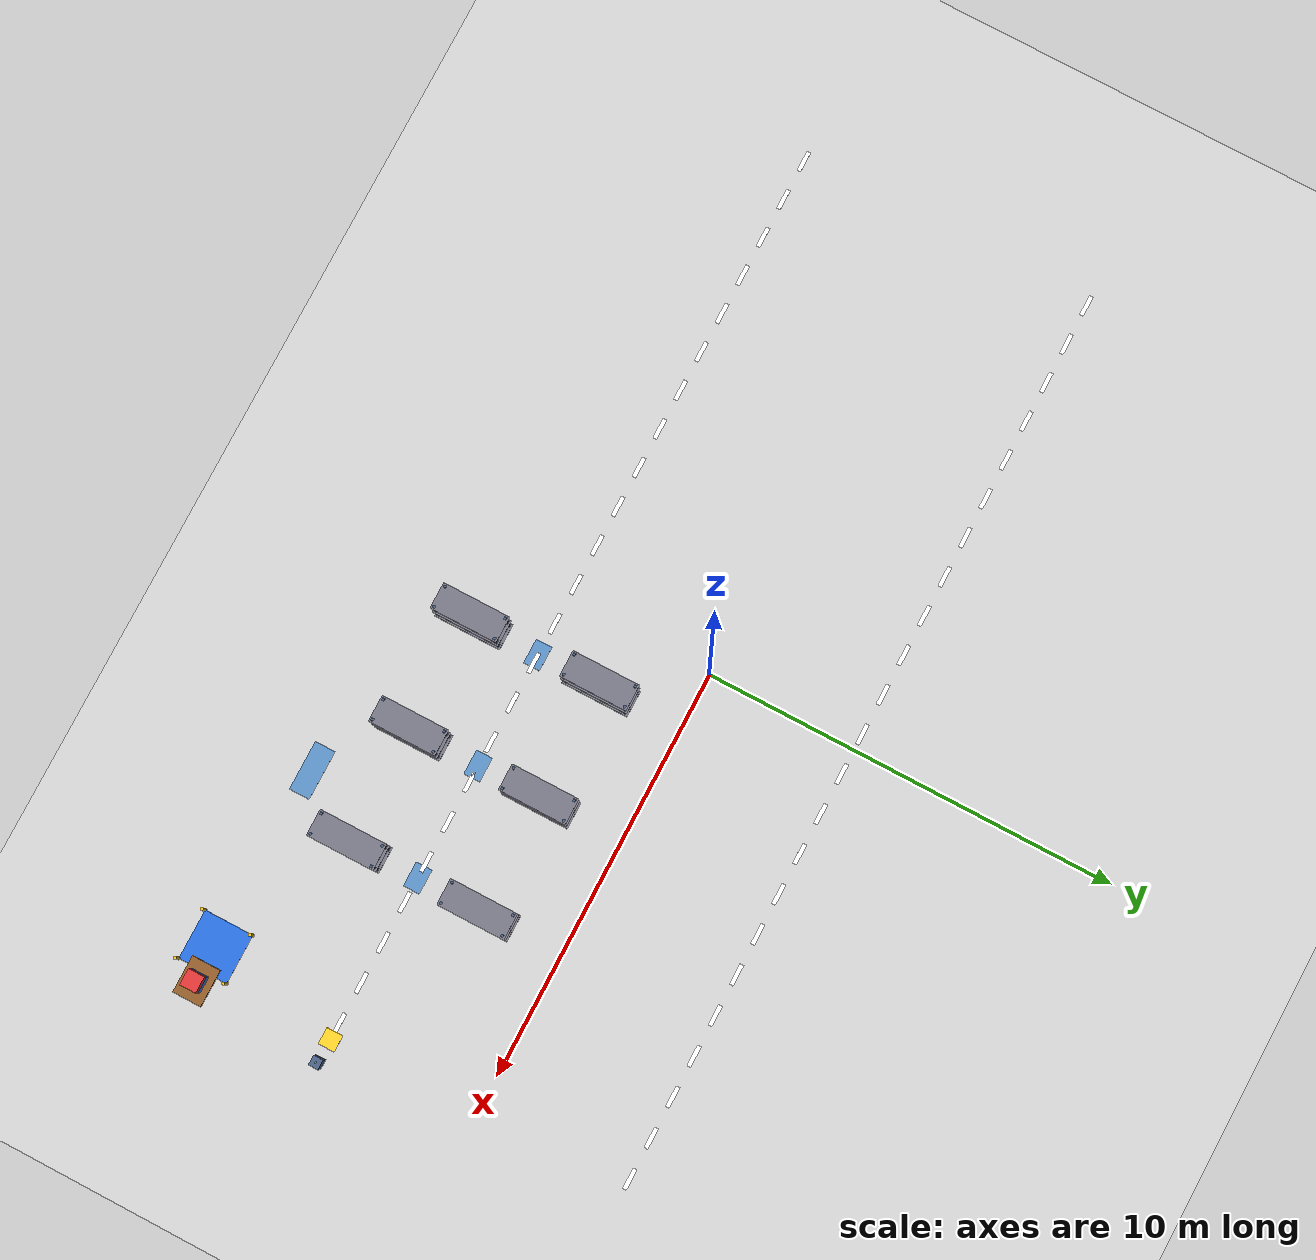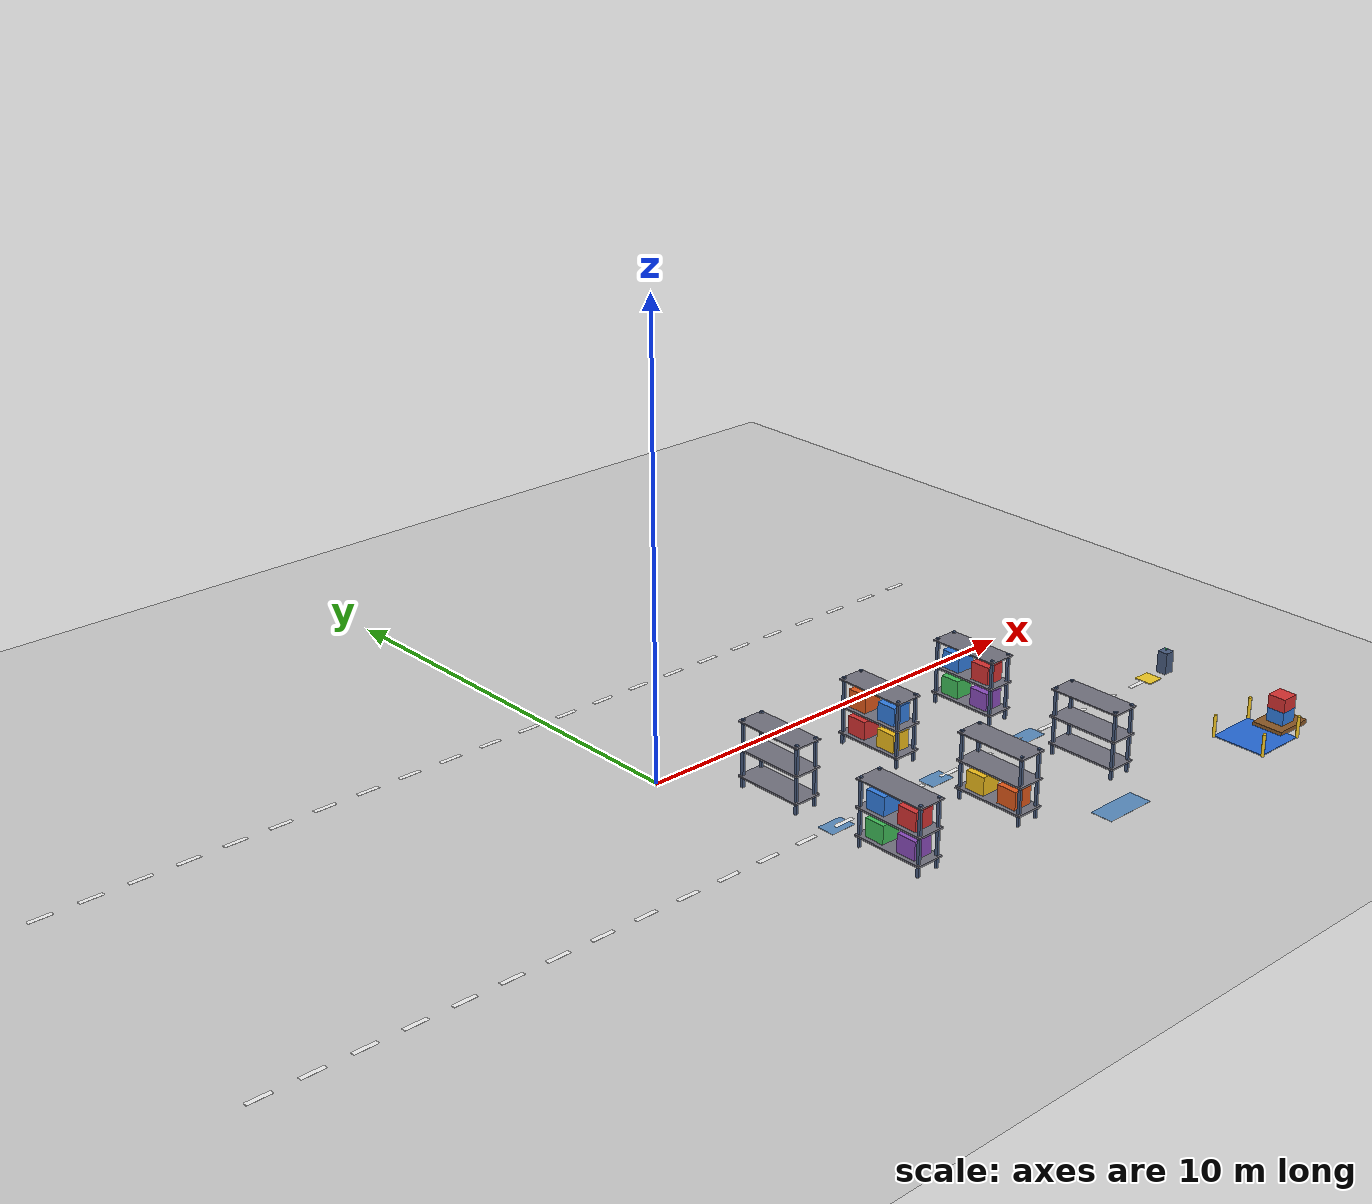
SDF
<sdf version="1.6">
 <world name="warehouse">
  <include><uri>model://ground_plane</uri></include>
  <include><uri>model://sun</uri></include>
  <model name="rack_r2_c3">
   <static>true</static>
   <pose>1.4 -2.0 0 0 0 0</pose>
   <link name="col">
    <collision name="col_c">
     <pose>0 0 0.75 0 0 0</pose>
     <geometry><box><size>0.6 1.6 1.5</size></box></geometry>
    </collision>
   </link>
   <link name="post_0_25_0_75">
    <visual name="post_0_25_0_75_v">
     <pose>0.25 0.75 0.75 0 0 0</pose>
     <geometry><box><size>0.06 0.06 1.5</size></box></geometry>
     <material>
      <ambient>0.28 0.36 0.5 1.0</ambient>
      <diffuse>0.28 0.36 0.5 1.0</diffuse>
      <specular>0.1 0.1 0.1 1</specular>
     </material>
    </visual>
   </link>
   <link name="post_0_25_m0_75">
    <visual name="post_0_25_m0_75_v">
     <pose>0.25 -0.75 0.75 0 0 0</pose>
     <geometry><box><size>0.06 0.06 1.5</size></box></geometry>
     <material>
      <ambient>0.28 0.36 0.5 1.0</ambient>
      <diffuse>0.28 0.36 0.5 1.0</diffuse>
      <specular>0.1 0.1 0.1 1</specular>
     </material>
    </visual>
   </link>
   <link name="post_m0_25_0_75">
    <visual name="post_m0_25_0_75_v">
     <pose>-0.25 0.75 0.75 0 0 0</pose>
     <geometry><box><size>0.06 0.06 1.5</size></box></geometry>
     <material>
      <ambient>0.28 0.36 0.5 1.0</ambient>
      <diffuse>0.28 0.36 0.5 1.0</diffuse>
      <specular>0.1 0.1 0.1 1</specular>
     </material>
    </visual>
   </link>
   <link name="post_m0_25_m0_75">
    <visual name="post_m0_25_m0_75_v">
     <pose>-0.25 -0.75 0.75 0 0 0</pose>
     <geometry><box><size>0.06 0.06 1.5</size></box></geometry>
     <material>
      <ambient>0.28 0.36 0.5 1.0</ambient>
      <diffuse>0.28 0.36 0.5 1.0</diffuse>
      <specular>0.1 0.1 0.1 1</specular>
     </material>
    </visual>
   </link>
   <link name="deck_low">
    <visual name="deck_low_v">
     <pose>0 0 0.25 0 0 0</pose>
     <geometry><box><size>0.64 1.6400000000000001 0.04</size></box></geometry>
     <material>
      <ambient>0.45 0.45 0.5 1.0</ambient>
      <diffuse>0.45 0.45 0.5 1.0</diffuse>
      <specular>0.1 0.1 0.1 1</specular>
     </material>
    </visual>
   </link>
   <link name="deck_mid">
    <visual name="deck_mid_v">
     <pose>0 0 0.85 0 0 0</pose>
     <geometry><box><size>0.64 1.6400000000000001 0.04</size></box></geometry>
     <material>
      <ambient>0.45 0.45 0.5 1.0</ambient>
      <diffuse>0.45 0.45 0.5 1.0</diffuse>
      <specular>0.1 0.1 0.1 1</specular>
     </material>
    </visual>
   </link>
   <link name="top_beam">
    <visual name="top_beam_v">
     <pose>0 0 1.45 0 0 0</pose>
     <geometry><box><size>0.64 1.6400000000000001 0.03</size></box></geometry>
     <material>
      <ambient>0.45 0.45 0.5 1.0</ambient>
      <diffuse>0.45 0.45 0.5 1.0</diffuse>
      <specular>0.1 0.1 0.1 1</specular>
     </material>
    </visual>
   </link>
  </model>
  <model name="rack_r2_c4">
   <static>true</static>
   <pose>4.2 -2.0 0 0 0 0</pose>
   <link name="col">
    <collision name="col_c">
     <pose>0 0 0.75 0 0 0</pose>
     <geometry><box><size>0.6 1.6 1.5</size></box></geometry>
    </collision>
   </link>
   <link name="post_0_25_0_75">
    <visual name="post_0_25_0_75_v">
     <pose>0.25 0.75 0.75 0 0 0</pose>
     <geometry><box><size>0.06 0.06 1.5</size></box></geometry>
     <material>
      <ambient>0.28 0.36 0.5 1.0</ambient>
      <diffuse>0.28 0.36 0.5 1.0</diffuse>
      <specular>0.1 0.1 0.1 1</specular>
     </material>
    </visual>
   </link>
   <link name="post_0_25_m0_75">
    <visual name="post_0_25_m0_75_v">
     <pose>0.25 -0.75 0.75 0 0 0</pose>
     <geometry><box><size>0.06 0.06 1.5</size></box></geometry>
     <material>
      <ambient>0.28 0.36 0.5 1.0</ambient>
      <diffuse>0.28 0.36 0.5 1.0</diffuse>
      <specular>0.1 0.1 0.1 1</specular>
     </material>
    </visual>
   </link>
   <link name="post_m0_25_0_75">
    <visual name="post_m0_25_0_75_v">
     <pose>-0.25 0.75 0.75 0 0 0</pose>
     <geometry><box><size>0.06 0.06 1.5</size></box></geometry>
     <material>
      <ambient>0.28 0.36 0.5 1.0</ambient>
      <diffuse>0.28 0.36 0.5 1.0</diffuse>
      <specular>0.1 0.1 0.1 1</specular>
     </material>
    </visual>
   </link>
   <link name="post_m0_25_m0_75">
    <visual name="post_m0_25_m0_75_v">
     <pose>-0.25 -0.75 0.75 0 0 0</pose>
     <geometry><box><size>0.06 0.06 1.5</size></box></geometry>
     <material>
      <ambient>0.28 0.36 0.5 1.0</ambient>
      <diffuse>0.28 0.36 0.5 1.0</diffuse>
      <specular>0.1 0.1 0.1 1</specular>
     </material>
    </visual>
   </link>
   <link name="deck_low">
    <visual name="deck_low_v">
     <pose>0 0 0.25 0 0 0</pose>
     <geometry><box><size>0.64 1.6400000000000001 0.04</size></box></geometry>
     <material>
      <ambient>0.45 0.45 0.5 1.0</ambient>
      <diffuse>0.45 0.45 0.5 1.0</diffuse>
      <specular>0.1 0.1 0.1 1</specular>
     </material>
    </visual>
   </link>
   <link name="deck_mid">
    <visual name="deck_mid_v">
     <pose>0 0 0.85 0 0 0</pose>
     <geometry><box><size>0.64 1.6400000000000001 0.04</size></box></geometry>
     <material>
      <ambient>0.45 0.45 0.5 1.0</ambient>
      <diffuse>0.45 0.45 0.5 1.0</diffuse>
      <specular>0.1 0.1 0.1 1</specular>
     </material>
    </visual>
   </link>
   <link name="top_beam">
    <visual name="top_beam_v">
     <pose>0 0 1.45 0 0 0</pose>
     <geometry><box><size>0.64 1.6400000000000001 0.03</size></box></geometry>
     <material>
      <ambient>0.45 0.45 0.5 1.0</ambient>
      <diffuse>0.45 0.45 0.5 1.0</diffuse>
      <specular>0.1 0.1 0.1 1</specular>
     </material>
    </visual>
   </link>
   <link name="box_l1">
    <visual name="box_l1_v">
     <pose>0 0.4 0.47 0 0 0</pose>
     <geometry><box><size>0.45 0.45 0.4</size></box></geometry>
     <material>
      <ambient>0.85 0.2 0.2 1.0</ambient>
      <diffuse>0.85 0.2 0.2 1.0</diffuse>
      <specular>0.1 0.1 0.1 1</specular>
     </material>
    </visual>
   </link>
   <link name="box_l2">
    <visual name="box_l2_v">
     <pose>0 -0.4 0.47 0 0 0</pose>
     <geometry><box><size>0.45 0.45 0.4</size></box></geometry>
     <material>
      <ambient>0.95 0.75 0.1 1.0</ambient>
      <diffuse>0.95 0.75 0.1 1.0</diffuse>
      <specular>0.1 0.1 0.1 1</specular>
     </material>
    </visual>
   </link>
   <link name="box_h1">
    <visual name="box_h1_v">
     <pose>0 0.4 1.07 0 0 0</pose>
     <geometry><box><size>0.45 0.45 0.4</size></box></geometry>
     <material>
      <ambient>0.9 0.35 0.1 1.0</ambient>
      <diffuse>0.9 0.35 0.1 1.0</diffuse>
      <specular>0.1 0.1 0.1 1</specular>
     </material>
    </visual>
   </link>
   <link name="box_h2">
    <visual name="box_h2_v">
     <pose>0 -0.4 1.07 0 0 0</pose>
     <geometry><box><size>0.45 0.45 0.4</size></box></geometry>
     <material>
      <ambient>0.2 0.5 0.9 1.0</ambient>
      <diffuse>0.2 0.5 0.9 1.0</diffuse>
      <specular>0.1 0.1 0.1 1</specular>
     </material>
    </visual>
   </link>
  </model>
  <model name="rack_r2_c5">
   <static>true</static>
   <pose>7.0 -2.0 0 0 0 0</pose>
   <link name="col">
    <collision name="col_c">
     <pose>0 0 0.75 0 0 0</pose>
     <geometry><box><size>0.6 1.0 1.5</size></box></geometry>
    </collision>
   </link>
   <link name="post_0_25_0_75">
    <visual name="post_0_25_0_75_v">
     <pose>0.25 0.75 0.75 0 0 0</pose>
     <geometry><box><size>0.06 0.06 1.5</size></box></geometry>
     <material>
      <ambient>0.28 0.36 0.5 1.0</ambient>
      <diffuse>0.28 0.36 0.5 1.0</diffuse>
      <specular>0.1 0.1 0.1 1</specular>
     </material>
    </visual>
   </link>
   <link name="post_0_25_m0_75">
    <visual name="post_0_25_m0_75_v">
     <pose>0.25 -0.75 0.75 0 0 0</pose>
     <geometry><box><size>0.06 0.06 1.5</size></box></geometry>
     <material>
      <ambient>0.28 0.36 0.5 1.0</ambient>
      <diffuse>0.28 0.36 0.5 1.0</diffuse>
      <specular>0.1 0.1 0.1 1</specular>
     </material>
    </visual>
   </link>
   <link name="post_m0_25_0_75">
    <visual name="post_m0_25_0_75_v">
     <pose>-0.25 0.75 0.75 0 0 0</pose>
     <geometry><box><size>0.06 0.06 1.5</size></box></geometry>
     <material>
      <ambient>0.28 0.36 0.5 1.0</ambient>
      <diffuse>0.28 0.36 0.5 1.0</diffuse>
      <specular>0.1 0.1 0.1 1</specular>
     </material>
    </visual>
   </link>
   <link name="post_m0_25_m0_75">
    <visual name="post_m0_25_m0_75_v">
     <pose>-0.25 -0.75 0.75 0 0 0</pose>
     <geometry><box><size>0.06 0.06 1.5</size></box></geometry>
     <material>
      <ambient>0.28 0.36 0.5 1.0</ambient>
      <diffuse>0.28 0.36 0.5 1.0</diffuse>
      <specular>0.1 0.1 0.1 1</specular>
     </material>
    </visual>
   </link>
   <link name="deck_low">
    <visual name="deck_low_v">
     <pose>0 0 0.25 0 0 0</pose>
     <geometry><box><size>0.64 1.6400000000000001 0.04</size></box></geometry>
     <material>
      <ambient>0.45 0.45 0.5 1.0</ambient>
      <diffuse>0.45 0.45 0.5 1.0</diffuse>
      <specular>0.1 0.1 0.1 1</specular>
     </material>
    </visual>
   </link>
   <link name="deck_mid">
    <visual name="deck_mid_v">
     <pose>0 0 0.85 0 0 0</pose>
     <geometry><box><size>0.64 1.6400000000000001 0.04</size></box></geometry>
     <material>
      <ambient>0.45 0.45 0.5 1.0</ambient>
      <diffuse>0.45 0.45 0.5 1.0</diffuse>
      <specular>0.1 0.1 0.1 1</specular>
     </material>
    </visual>
   </link>
   <link name="top_beam">
    <visual name="top_beam_v">
     <pose>0 0 1.45 0 0 0</pose>
     <geometry><box><size>0.64 1.6400000000000001 0.03</size></box></geometry>
     <material>
      <ambient>0.45 0.45 0.5 1.0</ambient>
      <diffuse>0.45 0.45 0.5 1.0</diffuse>
      <specular>0.1 0.1 0.1 1</specular>
     </material>
    </visual>
   </link>
   <link name="box_l1">
    <visual name="box_l1_v">
     <pose>0 0.4 0.47 0 0 0</pose>
     <geometry><box><size>0.45 0.45 0.4</size></box></geometry>
     <material>
      <ambient>0.25 0.75 0.35 1.0</ambient>
      <diffuse>0.25 0.75 0.35 1.0</diffuse>
      <specular>0.1 0.1 0.1 1</specular>
     </material>
    </visual>
   </link>
   <link name="box_l2">
    <visual name="box_l2_v">
     <pose>0 -0.4 0.47 0 0 0</pose>
     <geometry><box><size>0.45 0.45 0.4</size></box></geometry>
     <material>
      <ambient>0.55 0.3 0.75 1.0</ambient>
      <diffuse>0.55 0.3 0.75 1.0</diffuse>
      <specular>0.1 0.1 0.1 1</specular>
     </material>
    </visual>
   </link>
   <link name="box_h1">
    <visual name="box_h1_v">
     <pose>0 0.4 1.07 0 0 0</pose>
     <geometry><box><size>0.45 0.45 0.4</size></box></geometry>
     <material>
      <ambient>0.2 0.5 0.9 1.0</ambient>
      <diffuse>0.2 0.5 0.9 1.0</diffuse>
      <specular>0.1 0.1 0.1 1</specular>
     </material>
    </visual>
   </link>
   <link name="box_h2">
    <visual name="box_h2_v">
     <pose>0 -0.4 1.07 0 0 0</pose>
     <geometry><box><size>0.45 0.45 0.4</size></box></geometry>
     <material>
      <ambient>0.85 0.2 0.2 1.0</ambient>
      <diffuse>0.85 0.2 0.2 1.0</diffuse>
      <specular>0.1 0.1 0.1 1</specular>
     </material>
    </visual>
   </link>
  </model>
  <model name="rack_r3_c3">
   <static>true</static>
   <pose>1.4 -5.2 0 0 0 0</pose>
   <link name="col">
    <collision name="col_c">
     <pose>0 0 0.75 0 0 0</pose>
     <geometry><box><size>0.6 1.6 1.5</size></box></geometry>
    </collision>
   </link>
   <link name="post_0_25_0_75">
    <visual name="post_0_25_0_75_v">
     <pose>0.25 0.75 0.75 0 0 0</pose>
     <geometry><box><size>0.06 0.06 1.5</size></box></geometry>
     <material>
      <ambient>0.28 0.36 0.5 1.0</ambient>
      <diffuse>0.28 0.36 0.5 1.0</diffuse>
      <specular>0.1 0.1 0.1 1</specular>
     </material>
    </visual>
   </link>
   <link name="post_0_25_m0_75">
    <visual name="post_0_25_m0_75_v">
     <pose>0.25 -0.75 0.75 0 0 0</pose>
     <geometry><box><size>0.06 0.06 1.5</size></box></geometry>
     <material>
      <ambient>0.28 0.36 0.5 1.0</ambient>
      <diffuse>0.28 0.36 0.5 1.0</diffuse>
      <specular>0.1 0.1 0.1 1</specular>
     </material>
    </visual>
   </link>
   <link name="post_m0_25_0_75">
    <visual name="post_m0_25_0_75_v">
     <pose>-0.25 0.75 0.75 0 0 0</pose>
     <geometry><box><size>0.06 0.06 1.5</size></box></geometry>
     <material>
      <ambient>0.28 0.36 0.5 1.0</ambient>
      <diffuse>0.28 0.36 0.5 1.0</diffuse>
      <specular>0.1 0.1 0.1 1</specular>
     </material>
    </visual>
   </link>
   <link name="post_m0_25_m0_75">
    <visual name="post_m0_25_m0_75_v">
     <pose>-0.25 -0.75 0.75 0 0 0</pose>
     <geometry><box><size>0.06 0.06 1.5</size></box></geometry>
     <material>
      <ambient>0.28 0.36 0.5 1.0</ambient>
      <diffuse>0.28 0.36 0.5 1.0</diffuse>
      <specular>0.1 0.1 0.1 1</specular>
     </material>
    </visual>
   </link>
   <link name="deck_low">
    <visual name="deck_low_v">
     <pose>0 0 0.25 0 0 0</pose>
     <geometry><box><size>0.64 1.6400000000000001 0.04</size></box></geometry>
     <material>
      <ambient>0.45 0.45 0.5 1.0</ambient>
      <diffuse>0.45 0.45 0.5 1.0</diffuse>
      <specular>0.1 0.1 0.1 1</specular>
     </material>
    </visual>
   </link>
   <link name="deck_mid">
    <visual name="deck_mid_v">
     <pose>0 0 0.85 0 0 0</pose>
     <geometry><box><size>0.64 1.6400000000000001 0.04</size></box></geometry>
     <material>
      <ambient>0.45 0.45 0.5 1.0</ambient>
      <diffuse>0.45 0.45 0.5 1.0</diffuse>
      <specular>0.1 0.1 0.1 1</specular>
     </material>
    </visual>
   </link>
   <link name="top_beam">
    <visual name="top_beam_v">
     <pose>0 0 1.45 0 0 0</pose>
     <geometry><box><size>0.64 1.6400000000000001 0.03</size></box></geometry>
     <material>
      <ambient>0.45 0.45 0.5 1.0</ambient>
      <diffuse>0.45 0.45 0.5 1.0</diffuse>
      <specular>0.1 0.1 0.1 1</specular>
     </material>
    </visual>
   </link>
   <link name="box_l1">
    <visual name="box_l1_v">
     <pose>0 0.4 0.47 0 0 0</pose>
     <geometry><box><size>0.45 0.45 0.4</size></box></geometry>
     <material>
      <ambient>0.25 0.75 0.35 1.0</ambient>
      <diffuse>0.25 0.75 0.35 1.0</diffuse>
      <specular>0.1 0.1 0.1 1</specular>
     </material>
    </visual>
   </link>
   <link name="box_l2">
    <visual name="box_l2_v">
     <pose>0 -0.4 0.47 0 0 0</pose>
     <geometry><box><size>0.45 0.45 0.4</size></box></geometry>
     <material>
      <ambient>0.55 0.3 0.75 1.0</ambient>
      <diffuse>0.55 0.3 0.75 1.0</diffuse>
      <specular>0.1 0.1 0.1 1</specular>
     </material>
    </visual>
   </link>
   <link name="box_h1">
    <visual name="box_h1_v">
     <pose>0 0.4 1.07 0 0 0</pose>
     <geometry><box><size>0.45 0.45 0.4</size></box></geometry>
     <material>
      <ambient>0.2 0.5 0.9 1.0</ambient>
      <diffuse>0.2 0.5 0.9 1.0</diffuse>
      <specular>0.1 0.1 0.1 1</specular>
     </material>
    </visual>
   </link>
   <link name="box_h2">
    <visual name="box_h2_v">
     <pose>0 -0.4 1.07 0 0 0</pose>
     <geometry><box><size>0.45 0.45 0.4</size></box></geometry>
     <material>
      <ambient>0.85 0.2 0.2 1.0</ambient>
      <diffuse>0.85 0.2 0.2 1.0</diffuse>
      <specular>0.1 0.1 0.1 1</specular>
     </material>
    </visual>
   </link>
  </model>
  <model name="rack_r3_c4">
   <static>true</static>
   <pose>4.2 -5.2 0 0 0 0</pose>
   <link name="col">
    <collision name="col_c">
     <pose>0 0 0.75 0 0 0</pose>
     <geometry><box><size>0.6 1.6 1.5</size></box></geometry>
    </collision>
   </link>
   <link name="post_0_25_0_75">
    <visual name="post_0_25_0_75_v">
     <pose>0.25 0.75 0.75 0 0 0</pose>
     <geometry><box><size>0.06 0.06 1.5</size></box></geometry>
     <material>
      <ambient>0.28 0.36 0.5 1.0</ambient>
      <diffuse>0.28 0.36 0.5 1.0</diffuse>
      <specular>0.1 0.1 0.1 1</specular>
     </material>
    </visual>
   </link>
   <link name="post_0_25_m0_75">
    <visual name="post_0_25_m0_75_v">
     <pose>0.25 -0.75 0.75 0 0 0</pose>
     <geometry><box><size>0.06 0.06 1.5</size></box></geometry>
     <material>
      <ambient>0.28 0.36 0.5 1.0</ambient>
      <diffuse>0.28 0.36 0.5 1.0</diffuse>
      <specular>0.1 0.1 0.1 1</specular>
     </material>
    </visual>
   </link>
   <link name="post_m0_25_0_75">
    <visual name="post_m0_25_0_75_v">
     <pose>-0.25 0.75 0.75 0 0 0</pose>
     <geometry><box><size>0.06 0.06 1.5</size></box></geometry>
     <material>
      <ambient>0.28 0.36 0.5 1.0</ambient>
      <diffuse>0.28 0.36 0.5 1.0</diffuse>
      <specular>0.1 0.1 0.1 1</specular>
     </material>
    </visual>
   </link>
   <link name="post_m0_25_m0_75">
    <visual name="post_m0_25_m0_75_v">
     <pose>-0.25 -0.75 0.75 0 0 0</pose>
     <geometry><box><size>0.06 0.06 1.5</size></box></geometry>
     <material>
      <ambient>0.28 0.36 0.5 1.0</ambient>
      <diffuse>0.28 0.36 0.5 1.0</diffuse>
      <specular>0.1 0.1 0.1 1</specular>
     </material>
    </visual>
   </link>
   <link name="deck_low">
    <visual name="deck_low_v">
     <pose>0 0 0.25 0 0 0</pose>
     <geometry><box><size>0.64 1.6400000000000001 0.04</size></box></geometry>
     <material>
      <ambient>0.45 0.45 0.5 1.0</ambient>
      <diffuse>0.45 0.45 0.5 1.0</diffuse>
      <specular>0.1 0.1 0.1 1</specular>
     </material>
    </visual>
   </link>
   <link name="deck_mid">
    <visual name="deck_mid_v">
     <pose>0 0 0.85 0 0 0</pose>
     <geometry><box><size>0.64 1.6400000000000001 0.04</size></box></geometry>
     <material>
      <ambient>0.45 0.45 0.5 1.0</ambient>
      <diffuse>0.45 0.45 0.5 1.0</diffuse>
      <specular>0.1 0.1 0.1 1</specular>
     </material>
    </visual>
   </link>
   <link name="top_beam">
    <visual name="top_beam_v">
     <pose>0 0 1.45 0 0 0</pose>
     <geometry><box><size>0.64 1.6400000000000001 0.03</size></box></geometry>
     <material>
      <ambient>0.45 0.45 0.5 1.0</ambient>
      <diffuse>0.45 0.45 0.5 1.0</diffuse>
      <specular>0.1 0.1 0.1 1</specular>
     </material>
    </visual>
   </link>
   <link name="box_l1">
    <visual name="box_l1_v">
     <pose>0 0.4 0.47 0 0 0</pose>
     <geometry><box><size>0.45 0.45 0.4</size></box></geometry>
     <material>
      <ambient>0.95 0.75 0.1 1.0</ambient>
      <diffuse>0.95 0.75 0.1 1.0</diffuse>
      <specular>0.1 0.1 0.1 1</specular>
     </material>
    </visual>
   </link>
   <link name="box_l2">
    <visual name="box_l2_v">
     <pose>0 -0.4 0.47 0 0 0</pose>
     <geometry><box><size>0.45 0.45 0.4</size></box></geometry>
     <material>
      <ambient>0.9 0.35 0.1 1.0</ambient>
      <diffuse>0.9 0.35 0.1 1.0</diffuse>
      <specular>0.1 0.1 0.1 1</specular>
     </material>
    </visual>
   </link>
  </model>
  <model name="rack_r3_c5">
   <static>true</static>
   <pose>7.0 -5.2 0 0 0 0</pose>
   <link name="col">
    <collision name="col_c">
     <pose>0 0 0.75 0 0 0</pose>
     <geometry><box><size>0.6 1.0 1.5</size></box></geometry>
    </collision>
   </link>
   <link name="post_0_25_0_75">
    <visual name="post_0_25_0_75_v">
     <pose>0.25 0.75 0.75 0 0 0</pose>
     <geometry><box><size>0.06 0.06 1.5</size></box></geometry>
     <material>
      <ambient>0.28 0.36 0.5 1.0</ambient>
      <diffuse>0.28 0.36 0.5 1.0</diffuse>
      <specular>0.1 0.1 0.1 1</specular>
     </material>
    </visual>
   </link>
   <link name="post_0_25_m0_75">
    <visual name="post_0_25_m0_75_v">
     <pose>0.25 -0.75 0.75 0 0 0</pose>
     <geometry><box><size>0.06 0.06 1.5</size></box></geometry>
     <material>
      <ambient>0.28 0.36 0.5 1.0</ambient>
      <diffuse>0.28 0.36 0.5 1.0</diffuse>
      <specular>0.1 0.1 0.1 1</specular>
     </material>
    </visual>
   </link>
   <link name="post_m0_25_0_75">
    <visual name="post_m0_25_0_75_v">
     <pose>-0.25 0.75 0.75 0 0 0</pose>
     <geometry><box><size>0.06 0.06 1.5</size></box></geometry>
     <material>
      <ambient>0.28 0.36 0.5 1.0</ambient>
      <diffuse>0.28 0.36 0.5 1.0</diffuse>
      <specular>0.1 0.1 0.1 1</specular>
     </material>
    </visual>
   </link>
   <link name="post_m0_25_m0_75">
    <visual name="post_m0_25_m0_75_v">
     <pose>-0.25 -0.75 0.75 0 0 0</pose>
     <geometry><box><size>0.06 0.06 1.5</size></box></geometry>
     <material>
      <ambient>0.28 0.36 0.5 1.0</ambient>
      <diffuse>0.28 0.36 0.5 1.0</diffuse>
      <specular>0.1 0.1 0.1 1</specular>
     </material>
    </visual>
   </link>
   <link name="deck_low">
    <visual name="deck_low_v">
     <pose>0 0 0.25 0 0 0</pose>
     <geometry><box><size>0.64 1.6400000000000001 0.04</size></box></geometry>
     <material>
      <ambient>0.45 0.45 0.5 1.0</ambient>
      <diffuse>0.45 0.45 0.5 1.0</diffuse>
      <specular>0.1 0.1 0.1 1</specular>
     </material>
    </visual>
   </link>
   <link name="deck_mid">
    <visual name="deck_mid_v">
     <pose>0 0 0.85 0 0 0</pose>
     <geometry><box><size>0.64 1.6400000000000001 0.04</size></box></geometry>
     <material>
      <ambient>0.45 0.45 0.5 1.0</ambient>
      <diffuse>0.45 0.45 0.5 1.0</diffuse>
      <specular>0.1 0.1 0.1 1</specular>
     </material>
    </visual>
   </link>
   <link name="top_beam">
    <visual name="top_beam_v">
     <pose>0 0 1.45 0 0 0</pose>
     <geometry><box><size>0.64 1.6400000000000001 0.03</size></box></geometry>
     <material>
      <ambient>0.45 0.45 0.5 1.0</ambient>
      <diffuse>0.45 0.45 0.5 1.0</diffuse>
      <specular>0.1 0.1 0.1 1</specular>
     </material>
    </visual>
   </link>
  </model>
  <model name="station_dropoff_se">
   <static>true</static>
   <pose>10.4 -6.8 0 0 0 0.0</pose>
   <link name="zone">
    <visual name="zone_v">
     <pose>0 0 0.01 0 0 0</pose>
     <geometry><box><size>1.2 1.2 0.02</size></box></geometry>
     <material>
      <ambient>0.15 0.42 0.85 1.0</ambient>
      <diffuse>0.15 0.42 0.85 1.0</diffuse>
      <specular>0.1 0.1 0.1 1</specular>
     </material>
    </visual>
   </link>
   <link name="stopline">
    <visual name="stopline_v">
     <pose>0 0.28 0.011 0 0 0</pose>
     <geometry><box><size>1.1 0.06 0.012</size></box></geometry>
     <material>
      <ambient>0.95 0.95 0.95 1.0</ambient>
      <diffuse>0.95 0.95 0.95 1.0</diffuse>
      <specular>0.1 0.1 0.1 1</specular>
     </material>
    </visual>
   </link>
   <link name="bollard_0_6_0_6">
    <visual name="bollard_0_6_0_6_v">
     <pose>0.6 0.6 0.25 0 0 0</pose>
     <geometry><cylinder><radius>0.035</radius><length>0.5</length></cylinder></geometry>
     <material>
      <ambient>0.92 0.75 0.12 1.0</ambient>
      <diffuse>0.92 0.75 0.12 1.0</diffuse>
      <specular>0.1 0.1 0.1 1</specular>
     </material>
    </visual>
   </link>
   <link name="bollard_0_6_m0_6">
    <visual name="bollard_0_6_m0_6_v">
     <pose>0.6 -0.6 0.25 0 0 0</pose>
     <geometry><cylinder><radius>0.035</radius><length>0.5</length></cylinder></geometry>
     <material>
      <ambient>0.92 0.75 0.12 1.0</ambient>
      <diffuse>0.92 0.75 0.12 1.0</diffuse>
      <specular>0.1 0.1 0.1 1</specular>
     </material>
    </visual>
   </link>
   <link name="bollard_m0_6_0_6">
    <visual name="bollard_m0_6_0_6_v">
     <pose>-0.6 0.6 0.25 0 0 0</pose>
     <geometry><cylinder><radius>0.035</radius><length>0.5</length></cylinder></geometry>
     <material>
      <ambient>0.92 0.75 0.12 1.0</ambient>
      <diffuse>0.92 0.75 0.12 1.0</diffuse>
      <specular>0.1 0.1 0.1 1</specular>
     </material>
    </visual>
   </link>
   <link name="bollard_m0_6_m0_6">
    <visual name="bollard_m0_6_m0_6_v">
     <pose>-0.6 -0.6 0.25 0 0 0</pose>
     <geometry><cylinder><radius>0.035</radius><length>0.5</length></cylinder></geometry>
     <material>
      <ambient>0.92 0.75 0.12 1.0</ambient>
      <diffuse>0.92 0.75 0.12 1.0</diffuse>
      <specular>0.1 0.1 0.1 1</specular>
     </material>
    </visual>
   </link>
   <link name="pallet">
    <visual name="pallet_v">
     <pose>0.85 0 0.05 0 0 0</pose>
     <geometry><box><size>0.9 0.7 0.1</size></box></geometry>
     <material>
      <ambient>0.55 0.35 0.15 1.0</ambient>
      <diffuse>0.55 0.35 0.15 1.0</diffuse>
      <specular>0.1 0.1 0.1 1</specular>
     </material>
    </visual>
    <collision name="pallet_c">
     <pose>0.85 0 0.05 0 0 0</pose>
     <geometry><box><size>0.9 0.7 0.1</size></box></geometry>
    </collision>
   </link>
   <link name="goods1">
    <visual name="goods1_v">
     <pose>0.85 0 0.25 0 0 0</pose>
     <geometry><box><size>0.4 0.4 0.3</size></box></geometry>
     <material>
      <ambient>0.2 0.5 0.9 1.0</ambient>
      <diffuse>0.2 0.5 0.9 1.0</diffuse>
      <specular>0.1 0.1 0.1 1</specular>
     </material>
    </visual>
    <collision name="goods1_c">
     <pose>0.85 0 0.25 0 0 0</pose>
     <geometry><box><size>0.4 0.4 0.3</size></box></geometry>
    </collision>
   </link>
   <link name="goods2">
    <visual name="goods2_v">
     <pose>0.85 0 0.55 0 0 0</pose>
     <geometry><box><size>0.4 0.4 0.3</size></box></geometry>
     <material>
      <ambient>0.85 0.2 0.2 1.0</ambient>
      <diffuse>0.85 0.2 0.2 1.0</diffuse>
      <specular>0.1 0.1 0.1 1</specular>
     </material>
    </visual>
    <collision name="goods2_c">
     <pose>0.85 0 0.55 0 0 0</pose>
     <geometry><box><size>0.4 0.4 0.3</size></box></geometry>
    </collision>
   </link>
  </model>
  <model name="charger_2">
   <static>true</static>
   <pose>11.0 -3.6 0 0 0 0.0</pose>
   <link name="pad">
    <visual name="pad_v">
     <pose>0 0 0.01 0 0 0</pose>
     <geometry><box><size>0.4 0.4 0.02</size></box></geometry>
     <material>
      <ambient>0.95 0.8 0.15 1.0</ambient>
      <diffuse>0.95 0.8 0.15 1.0</diffuse>
      <specular>0.1 0.1 0.1 1</specular>
     </material>
    </visual>
   </link>
   <link name="body">
    <visual name="body_v">
     <pose>0.55 0 0.25 0 0 0</pose>
     <geometry><box><size>0.24 0.24 0.5</size></box></geometry>
     <material>
      <ambient>0.28 0.36 0.5 1.0</ambient>
      <diffuse>0.28 0.36 0.5 1.0</diffuse>
      <specular>0.1 0.1 0.1 1</specular>
     </material>
    </visual>
    <collision name="body_c">
     <pose>0.55 0 0.25 0 0 0</pose>
     <geometry><box><size>0.24 0.24 0.5</size></box></geometry>
    </collision>
   </link>
   <link name="led">
    <visual name="led_v">
     <pose>0.55 0 0.53 0 0 0</pose>
     <geometry><cylinder><radius>0.02</radius><length>0.03</length></cylinder></geometry>
     <material>
      <ambient>0.12 0.68 0.32 1.0</ambient>
      <diffuse>0.12 0.68 0.32 1.0</diffuse>
      <specular>0.1 0.1 0.1 1</specular>
     </material>
    </visual>
    <collision name="led_c">
     <pose>0.55 0 0.53 0 0 0</pose>
     <geometry><cylinder><radius>0.02</radius><length>0.03</length></cylinder></geometry>
    </collision>
   </link>
  </model>
  <model name="rack_bay_9">
   <static>true</static>
   <pose>1.4 -3.6 0 0 0 0</pose>
   <link name="pad">
    <visual name="pad_v">
     <pose>0 0 0.005 0 0 0</pose>
     <geometry><box><size>0.6 0.4 0.005</size></box></geometry>
     <material>
      <ambient>0.35 0.55 0.75 1.0</ambient>
      <diffuse>0.35 0.55 0.75 1.0</diffuse>
      <specular>0.1 0.1 0.1 1</specular>
     </material>
    </visual>
   </link>
  </model>
  <model name="rack_bay_10">
   <static>true</static>
   <pose>4.2 -3.6 0 0 0 0</pose>
   <link name="pad">
    <visual name="pad_v">
     <pose>0 0 0.005 0 0 0</pose>
     <geometry><box><size>0.6 0.4 0.005</size></box></geometry>
     <material>
      <ambient>0.35 0.55 0.75 1.0</ambient>
      <diffuse>0.35 0.55 0.75 1.0</diffuse>
      <specular>0.1 0.1 0.1 1</specular>
     </material>
    </visual>
   </link>
  </model>
  <model name="rack_bay_11">
   <static>true</static>
   <pose>7.0 -3.6 0 0 0 0</pose>
   <link name="pad">
    <visual name="pad_v">
     <pose>0 0 0.005 0 0 0</pose>
     <geometry><box><size>0.6 0.4 0.005</size></box></geometry>
     <material>
      <ambient>0.35 0.55 0.75 1.0</ambient>
      <diffuse>0.35 0.55 0.75 1.0</diffuse>
      <specular>0.1 0.1 0.1 1</specular>
     </material>
    </visual>
   </link>
  </model>
  <model name="port_pad_3">
   <static>true</static>
   <pose>6.0 -6.8 0 0 0 0</pose>
   <link name="pad">
    <visual name="pad_v">
     <pose>0 0 0.005 0 0 0</pose>
     <geometry><box><size>1.2 0.5 0.005</size></box></geometry>
     <material>
      <ambient>0.35 0.55 0.75 1.0</ambient>
      <diffuse>0.35 0.55 0.75 1.0</diffuse>
      <specular>0.1 0.1 0.1 1</specular>
     </material>
    </visual>
   </link>
  </model>
  <model name="lane_north">
   <static>true</static>
   <link name="dash_0">
    <visual name="dash_0_v">
     <pose>-11.4 3.6 0.005 0 0 0</pose>
     <geometry><box><size>0.5 0.1 0.005</size></box></geometry>
     <material>
      <ambient>0.95 0.95 0.95 1.0</ambient>
      <diffuse>0.95 0.95 0.95 1.0</diffuse>
      <specular>0.1 0.1 0.1 1</specular>
     </material>
    </visual>
   </link>
   <link name="dash_1">
    <visual name="dash_1_v">
     <pose>-10.4 3.6 0.005 0 0 0</pose>
     <geometry><box><size>0.5 0.1 0.005</size></box></geometry>
     <material>
      <ambient>0.95 0.95 0.95 1.0</ambient>
      <diffuse>0.95 0.95 0.95 1.0</diffuse>
      <specular>0.1 0.1 0.1 1</specular>
     </material>
    </visual>
   </link>
   <link name="dash_2">
    <visual name="dash_2_v">
     <pose>-9.4 3.6 0.005 0 0 0</pose>
     <geometry><box><size>0.5 0.1 0.005</size></box></geometry>
     <material>
      <ambient>0.95 0.95 0.95 1.0</ambient>
      <diffuse>0.95 0.95 0.95 1.0</diffuse>
      <specular>0.1 0.1 0.1 1</specular>
     </material>
    </visual>
   </link>
   <link name="dash_3">
    <visual name="dash_3_v">
     <pose>-8.4 3.6 0.005 0 0 0</pose>
     <geometry><box><size>0.5 0.1 0.005</size></box></geometry>
     <material>
      <ambient>0.95 0.95 0.95 1.0</ambient>
      <diffuse>0.95 0.95 0.95 1.0</diffuse>
      <specular>0.1 0.1 0.1 1</specular>
     </material>
    </visual>
   </link>
   <link name="dash_4">
    <visual name="dash_4_v">
     <pose>-7.4 3.6 0.005 0 0 0</pose>
     <geometry><box><size>0.5 0.1 0.005</size></box></geometry>
     <material>
      <ambient>0.95 0.95 0.95 1.0</ambient>
      <diffuse>0.95 0.95 0.95 1.0</diffuse>
      <specular>0.1 0.1 0.1 1</specular>
     </material>
    </visual>
   </link>
   <link name="dash_5">
    <visual name="dash_5_v">
     <pose>-6.4 3.6 0.005 0 0 0</pose>
     <geometry><box><size>0.5 0.1 0.005</size></box></geometry>
     <material>
      <ambient>0.95 0.95 0.95 1.0</ambient>
      <diffuse>0.95 0.95 0.95 1.0</diffuse>
      <specular>0.1 0.1 0.1 1</specular>
     </material>
    </visual>
   </link>
   <link name="dash_6">
    <visual name="dash_6_v">
     <pose>-5.4 3.6 0.005 0 0 0</pose>
     <geometry><box><size>0.5 0.1 0.005</size></box></geometry>
     <material>
      <ambient>0.95 0.95 0.95 1.0</ambient>
      <diffuse>0.95 0.95 0.95 1.0</diffuse>
      <specular>0.1 0.1 0.1 1</specular>
     </material>
    </visual>
   </link>
   <link name="dash_7">
    <visual name="dash_7_v">
     <pose>-4.4 3.6 0.005 0 0 0</pose>
     <geometry><box><size>0.5 0.1 0.005</size></box></geometry>
     <material>
      <ambient>0.95 0.95 0.95 1.0</ambient>
      <diffuse>0.95 0.95 0.95 1.0</diffuse>
      <specular>0.1 0.1 0.1 1</specular>
     </material>
    </visual>
   </link>
   <link name="dash_8">
    <visual name="dash_8_v">
     <pose>-3.4000000000000004 3.6 0.005 0 0 0</pose>
     <geometry><box><size>0.5 0.1 0.005</size></box></geometry>
     <material>
      <ambient>0.95 0.95 0.95 1.0</ambient>
      <diffuse>0.95 0.95 0.95 1.0</diffuse>
      <specular>0.1 0.1 0.1 1</specular>
     </material>
    </visual>
   </link>
   <link name="dash_9">
    <visual name="dash_9_v">
     <pose>-2.4000000000000004 3.6 0.005 0 0 0</pose>
     <geometry><box><size>0.5 0.1 0.005</size></box></geometry>
     <material>
      <ambient>0.95 0.95 0.95 1.0</ambient>
      <diffuse>0.95 0.95 0.95 1.0</diffuse>
      <specular>0.1 0.1 0.1 1</specular>
     </material>
    </visual>
   </link>
   <link name="dash_10">
    <visual name="dash_10_v">
     <pose>-1.4000000000000004 3.6 0.005 0 0 0</pose>
     <geometry><box><size>0.5 0.1 0.005</size></box></geometry>
     <material>
      <ambient>0.95 0.95 0.95 1.0</ambient>
      <diffuse>0.95 0.95 0.95 1.0</diffuse>
      <specular>0.1 0.1 0.1 1</specular>
     </material>
    </visual>
   </link>
   <link name="dash_11">
    <visual name="dash_11_v">
     <pose>-0.40000000000000036 3.6 0.005 0 0 0</pose>
     <geometry><box><size>0.5 0.1 0.005</size></box></geometry>
     <material>
      <ambient>0.95 0.95 0.95 1.0</ambient>
      <diffuse>0.95 0.95 0.95 1.0</diffuse>
      <specular>0.1 0.1 0.1 1</specular>
     </material>
    </visual>
   </link>
   <link name="dash_12">
    <visual name="dash_12_v">
     <pose>0.5999999999999996 3.6 0.005 0 0 0</pose>
     <geometry><box><size>0.5 0.1 0.005</size></box></geometry>
     <material>
      <ambient>0.95 0.95 0.95 1.0</ambient>
      <diffuse>0.95 0.95 0.95 1.0</diffuse>
      <specular>0.1 0.1 0.1 1</specular>
     </material>
    </visual>
   </link>
   <link name="dash_13">
    <visual name="dash_13_v">
     <pose>1.5999999999999996 3.6 0.005 0 0 0</pose>
     <geometry><box><size>0.5 0.1 0.005</size></box></geometry>
     <material>
      <ambient>0.95 0.95 0.95 1.0</ambient>
      <diffuse>0.95 0.95 0.95 1.0</diffuse>
      <specular>0.1 0.1 0.1 1</specular>
     </material>
    </visual>
   </link>
   <link name="dash_14">
    <visual name="dash_14_v">
     <pose>2.5999999999999996 3.6 0.005 0 0 0</pose>
     <geometry><box><size>0.5 0.1 0.005</size></box></geometry>
     <material>
      <ambient>0.95 0.95 0.95 1.0</ambient>
      <diffuse>0.95 0.95 0.95 1.0</diffuse>
      <specular>0.1 0.1 0.1 1</specular>
     </material>
    </visual>
   </link>
   <link name="dash_15">
    <visual name="dash_15_v">
     <pose>3.5999999999999996 3.6 0.005 0 0 0</pose>
     <geometry><box><size>0.5 0.1 0.005</size></box></geometry>
     <material>
      <ambient>0.95 0.95 0.95 1.0</ambient>
      <diffuse>0.95 0.95 0.95 1.0</diffuse>
      <specular>0.1 0.1 0.1 1</specular>
     </material>
    </visual>
   </link>
   <link name="dash_16">
    <visual name="dash_16_v">
     <pose>4.6 3.6 0.005 0 0 0</pose>
     <geometry><box><size>0.5 0.1 0.005</size></box></geometry>
     <material>
      <ambient>0.95 0.95 0.95 1.0</ambient>
      <diffuse>0.95 0.95 0.95 1.0</diffuse>
      <specular>0.1 0.1 0.1 1</specular>
     </material>
    </visual>
   </link>
   <link name="dash_17">
    <visual name="dash_17_v">
     <pose>5.6 3.6 0.005 0 0 0</pose>
     <geometry><box><size>0.5 0.1 0.005</size></box></geometry>
     <material>
      <ambient>0.95 0.95 0.95 1.0</ambient>
      <diffuse>0.95 0.95 0.95 1.0</diffuse>
      <specular>0.1 0.1 0.1 1</specular>
     </material>
    </visual>
   </link>
   <link name="dash_18">
    <visual name="dash_18_v">
     <pose>6.6 3.6 0.005 0 0 0</pose>
     <geometry><box><size>0.5 0.1 0.005</size></box></geometry>
     <material>
      <ambient>0.95 0.95 0.95 1.0</ambient>
      <diffuse>0.95 0.95 0.95 1.0</diffuse>
      <specular>0.1 0.1 0.1 1</specular>
     </material>
    </visual>
   </link>
   <link name="dash_19">
    <visual name="dash_19_v">
     <pose>7.6 3.6 0.005 0 0 0</pose>
     <geometry><box><size>0.5 0.1 0.005</size></box></geometry>
     <material>
      <ambient>0.95 0.95 0.95 1.0</ambient>
      <diffuse>0.95 0.95 0.95 1.0</diffuse>
      <specular>0.1 0.1 0.1 1</specular>
     </material>
    </visual>
   </link>
   <link name="dash_20">
    <visual name="dash_20_v">
     <pose>8.6 3.6 0.005 0 0 0</pose>
     <geometry><box><size>0.5 0.1 0.005</size></box></geometry>
     <material>
      <ambient>0.95 0.95 0.95 1.0</ambient>
      <diffuse>0.95 0.95 0.95 1.0</diffuse>
      <specular>0.1 0.1 0.1 1</specular>
     </material>
    </visual>
   </link>
   <link name="dash_21">
    <visual name="dash_21_v">
     <pose>9.6 3.6 0.005 0 0 0</pose>
     <geometry><box><size>0.5 0.1 0.005</size></box></geometry>
     <material>
      <ambient>0.95 0.95 0.95 1.0</ambient>
      <diffuse>0.95 0.95 0.95 1.0</diffuse>
      <specular>0.1 0.1 0.1 1</specular>
     </material>
    </visual>
   </link>
   <link name="dash_22">
    <visual name="dash_22_v">
     <pose>10.6 3.6 0.005 0 0 0</pose>
     <geometry><box><size>0.5 0.1 0.005</size></box></geometry>
     <material>
      <ambient>0.95 0.95 0.95 1.0</ambient>
      <diffuse>0.95 0.95 0.95 1.0</diffuse>
      <specular>0.1 0.1 0.1 1</specular>
     </material>
    </visual>
   </link>
  </model>
  <model name="lane_south">
   <static>true</static>
   <link name="dash_0">
    <visual name="dash_0_v">
     <pose>-11.4 -3.6 0.005 0 0 0</pose>
     <geometry><box><size>0.5 0.1 0.005</size></box></geometry>
     <material>
      <ambient>0.95 0.95 0.95 1.0</ambient>
      <diffuse>0.95 0.95 0.95 1.0</diffuse>
      <specular>0.1 0.1 0.1 1</specular>
     </material>
    </visual>
   </link>
   <link name="dash_1">
    <visual name="dash_1_v">
     <pose>-10.4 -3.6 0.005 0 0 0</pose>
     <geometry><box><size>0.5 0.1 0.005</size></box></geometry>
     <material>
      <ambient>0.95 0.95 0.95 1.0</ambient>
      <diffuse>0.95 0.95 0.95 1.0</diffuse>
      <specular>0.1 0.1 0.1 1</specular>
     </material>
    </visual>
   </link>
   <link name="dash_2">
    <visual name="dash_2_v">
     <pose>-9.4 -3.6 0.005 0 0 0</pose>
     <geometry><box><size>0.5 0.1 0.005</size></box></geometry>
     <material>
      <ambient>0.95 0.95 0.95 1.0</ambient>
      <diffuse>0.95 0.95 0.95 1.0</diffuse>
      <specular>0.1 0.1 0.1 1</specular>
     </material>
    </visual>
   </link>
   <link name="dash_3">
    <visual name="dash_3_v">
     <pose>-8.4 -3.6 0.005 0 0 0</pose>
     <geometry><box><size>0.5 0.1 0.005</size></box></geometry>
     <material>
      <ambient>0.95 0.95 0.95 1.0</ambient>
      <diffuse>0.95 0.95 0.95 1.0</diffuse>
      <specular>0.1 0.1 0.1 1</specular>
     </material>
    </visual>
   </link>
   <link name="dash_4">
    <visual name="dash_4_v">
     <pose>-7.4 -3.6 0.005 0 0 0</pose>
     <geometry><box><size>0.5 0.1 0.005</size></box></geometry>
     <material>
      <ambient>0.95 0.95 0.95 1.0</ambient>
      <diffuse>0.95 0.95 0.95 1.0</diffuse>
      <specular>0.1 0.1 0.1 1</specular>
     </material>
    </visual>
   </link>
   <link name="dash_5">
    <visual name="dash_5_v">
     <pose>-6.4 -3.6 0.005 0 0 0</pose>
     <geometry><box><size>0.5 0.1 0.005</size></box></geometry>
     <material>
      <ambient>0.95 0.95 0.95 1.0</ambient>
      <diffuse>0.95 0.95 0.95 1.0</diffuse>
      <specular>0.1 0.1 0.1 1</specular>
     </material>
    </visual>
   </link>
   <link name="dash_6">
    <visual name="dash_6_v">
     <pose>-5.4 -3.6 0.005 0 0 0</pose>
     <geometry><box><size>0.5 0.1 0.005</size></box></geometry>
     <material>
      <ambient>0.95 0.95 0.95 1.0</ambient>
      <diffuse>0.95 0.95 0.95 1.0</diffuse>
      <specular>0.1 0.1 0.1 1</specular>
     </material>
    </visual>
   </link>
   <link name="dash_7">
    <visual name="dash_7_v">
     <pose>-4.4 -3.6 0.005 0 0 0</pose>
     <geometry><box><size>0.5 0.1 0.005</size></box></geometry>
     <material>
      <ambient>0.95 0.95 0.95 1.0</ambient>
      <diffuse>0.95 0.95 0.95 1.0</diffuse>
      <specular>0.1 0.1 0.1 1</specular>
     </material>
    </visual>
   </link>
   <link name="dash_8">
    <visual name="dash_8_v">
     <pose>-3.4000000000000004 -3.6 0.005 0 0 0</pose>
     <geometry><box><size>0.5 0.1 0.005</size></box></geometry>
     <material>
      <ambient>0.95 0.95 0.95 1.0</ambient>
      <diffuse>0.95 0.95 0.95 1.0</diffuse>
      <specular>0.1 0.1 0.1 1</specular>
     </material>
    </visual>
   </link>
   <link name="dash_9">
    <visual name="dash_9_v">
     <pose>-2.4000000000000004 -3.6 0.005 0 0 0</pose>
     <geometry><box><size>0.5 0.1 0.005</size></box></geometry>
     <material>
      <ambient>0.95 0.95 0.95 1.0</ambient>
      <diffuse>0.95 0.95 0.95 1.0</diffuse>
      <specular>0.1 0.1 0.1 1</specular>
     </material>
    </visual>
   </link>
   <link name="dash_10">
    <visual name="dash_10_v">
     <pose>-1.4000000000000004 -3.6 0.005 0 0 0</pose>
     <geometry><box><size>0.5 0.1 0.005</size></box></geometry>
     <material>
      <ambient>0.95 0.95 0.95 1.0</ambient>
      <diffuse>0.95 0.95 0.95 1.0</diffuse>
      <specular>0.1 0.1 0.1 1</specular>
     </material>
    </visual>
   </link>
   <link name="dash_11">
    <visual name="dash_11_v">
     <pose>-0.40000000000000036 -3.6 0.005 0 0 0</pose>
     <geometry><box><size>0.5 0.1 0.005</size></box></geometry>
     <material>
      <ambient>0.95 0.95 0.95 1.0</ambient>
      <diffuse>0.95 0.95 0.95 1.0</diffuse>
      <specular>0.1 0.1 0.1 1</specular>
     </material>
    </visual>
   </link>
   <link name="dash_12">
    <visual name="dash_12_v">
     <pose>0.5999999999999996 -3.6 0.005 0 0 0</pose>
     <geometry><box><size>0.5 0.1 0.005</size></box></geometry>
     <material>
      <ambient>0.95 0.95 0.95 1.0</ambient>
      <diffuse>0.95 0.95 0.95 1.0</diffuse>
      <specular>0.1 0.1 0.1 1</specular>
     </material>
    </visual>
   </link>
   <link name="dash_13">
    <visual name="dash_13_v">
     <pose>1.5999999999999996 -3.6 0.005 0 0 0</pose>
     <geometry><box><size>0.5 0.1 0.005</size></box></geometry>
     <material>
      <ambient>0.95 0.95 0.95 1.0</ambient>
      <diffuse>0.95 0.95 0.95 1.0</diffuse>
      <specular>0.1 0.1 0.1 1</specular>
     </material>
    </visual>
   </link>
   <link name="dash_14">
    <visual name="dash_14_v">
     <pose>2.5999999999999996 -3.6 0.005 0 0 0</pose>
     <geometry><box><size>0.5 0.1 0.005</size></box></geometry>
     <material>
      <ambient>0.95 0.95 0.95 1.0</ambient>
      <diffuse>0.95 0.95 0.95 1.0</diffuse>
      <specular>0.1 0.1 0.1 1</specular>
     </material>
    </visual>
   </link>
   <link name="dash_15">
    <visual name="dash_15_v">
     <pose>3.5999999999999996 -3.6 0.005 0 0 0</pose>
     <geometry><box><size>0.5 0.1 0.005</size></box></geometry>
     <material>
      <ambient>0.95 0.95 0.95 1.0</ambient>
      <diffuse>0.95 0.95 0.95 1.0</diffuse>
      <specular>0.1 0.1 0.1 1</specular>
     </material>
    </visual>
   </link>
   <link name="dash_16">
    <visual name="dash_16_v">
     <pose>4.6 -3.6 0.005 0 0 0</pose>
     <geometry><box><size>0.5 0.1 0.005</size></box></geometry>
     <material>
      <ambient>0.95 0.95 0.95 1.0</ambient>
      <diffuse>0.95 0.95 0.95 1.0</diffuse>
      <specular>0.1 0.1 0.1 1</specular>
     </material>
    </visual>
   </link>
   <link name="dash_17">
    <visual name="dash_17_v">
     <pose>5.6 -3.6 0.005 0 0 0</pose>
     <geometry><box><size>0.5 0.1 0.005</size></box></geometry>
     <material>
      <ambient>0.95 0.95 0.95 1.0</ambient>
      <diffuse>0.95 0.95 0.95 1.0</diffuse>
      <specular>0.1 0.1 0.1 1</specular>
     </material>
    </visual>
   </link>
   <link name="dash_18">
    <visual name="dash_18_v">
     <pose>6.6 -3.6 0.005 0 0 0</pose>
     <geometry><box><size>0.5 0.1 0.005</size></box></geometry>
     <material>
      <ambient>0.95 0.95 0.95 1.0</ambient>
      <diffuse>0.95 0.95 0.95 1.0</diffuse>
      <specular>0.1 0.1 0.1 1</specular>
     </material>
    </visual>
   </link>
   <link name="dash_19">
    <visual name="dash_19_v">
     <pose>7.6 -3.6 0.005 0 0 0</pose>
     <geometry><box><size>0.5 0.1 0.005</size></box></geometry>
     <material>
      <ambient>0.95 0.95 0.95 1.0</ambient>
      <diffuse>0.95 0.95 0.95 1.0</diffuse>
      <specular>0.1 0.1 0.1 1</specular>
     </material>
    </visual>
   </link>
   <link name="dash_20">
    <visual name="dash_20_v">
     <pose>8.6 -3.6 0.005 0 0 0</pose>
     <geometry><box><size>0.5 0.1 0.005</size></box></geometry>
     <material>
      <ambient>0.95 0.95 0.95 1.0</ambient>
      <diffuse>0.95 0.95 0.95 1.0</diffuse>
      <specular>0.1 0.1 0.1 1</specular>
     </material>
    </visual>
   </link>
   <link name="dash_21">
    <visual name="dash_21_v">
     <pose>9.6 -3.6 0.005 0 0 0</pose>
     <geometry><box><size>0.5 0.1 0.005</size></box></geometry>
     <material>
      <ambient>0.95 0.95 0.95 1.0</ambient>
      <diffuse>0.95 0.95 0.95 1.0</diffuse>
      <specular>0.1 0.1 0.1 1</specular>
     </material>
    </visual>
   </link>
   <link name="dash_22">
    <visual name="dash_22_v">
     <pose>10.6 -3.6 0.005 0 0 0</pose>
     <geometry><box><size>0.5 0.1 0.005</size></box></geometry>
     <material>
      <ambient>0.95 0.95 0.95 1.0</ambient>
      <diffuse>0.95 0.95 0.95 1.0</diffuse>
      <specular>0.1 0.1 0.1 1</specular>
     </material>
    </visual>
   </link>
  </model>
 </world>
</sdf>
